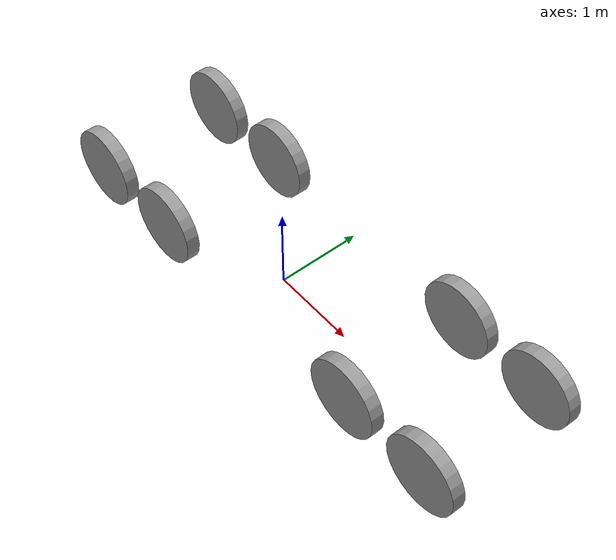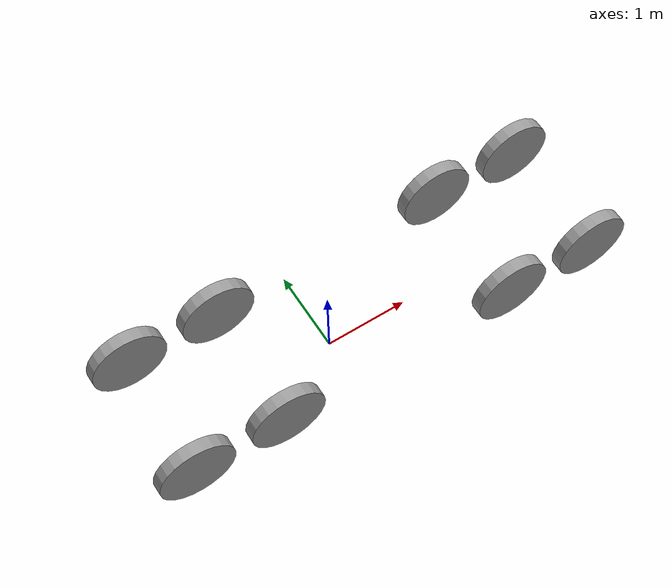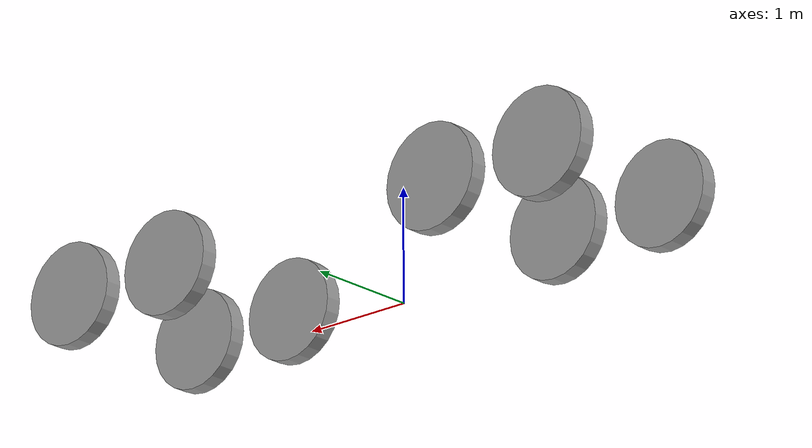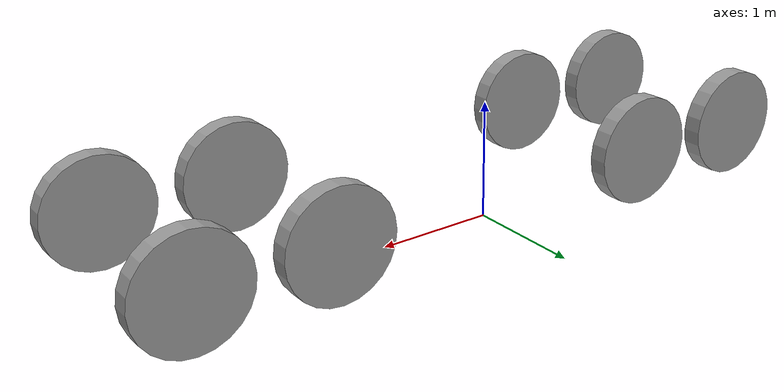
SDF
<?xml version='1.0'?>
<sdf version='1.7'>
  <model name='train_wheels'>
    <link name='link'>
      <inertial>
        <mass>1</mass>
        <inertia>
          <ixx>0.145833</ixx>
          <ixy>0</ixy>
          <ixz>0</ixz>
          <iyy>0.145833</iyy>
          <iyz>0</iyz>
          <izz>0.125</izz>
        </inertia>
        <pose>0 0 0 0 -0 0</pose>
      </inertial>
      <self_collide>0</self_collide>
      <enable_wind>0</enable_wind>
      <kinematic>0</kinematic>
      <pose>3 0.75 0.6 0 -0 0</pose>
      <gravity>1</gravity>
      <visual name='visual'>
        <geometry>
          <cylinder>
            <radius>0.45</radius>
            <length>0.15</length>
          </cylinder>
        </geometry>
        <material>
          <script>
            <name>Gazebo/Grey</name>
            <uri>file://media/materials/scripts/gazebo.material</uri>
          </script>
          <shader type='pixel'>
            <normal_map>__default__</normal_map>
          </shader>
          <ambient>0.3 0.3 0.3 1</ambient>
          <diffuse>0.7 0.7 0.7 1</diffuse>
          <specular>0.01 0.01 0.01 1</specular>
          <emissive>0 0 0 1</emissive>
        </material>
        <pose>0 0 0 1.5708 -0 0</pose>
        <transparency>0</transparency>
        <cast_shadows>1</cast_shadows>
      </visual>
    </link>
    <link name='link_clone'>
      <inertial>
        <mass>1</mass>
        <inertia>
          <ixx>0.145833</ixx>
          <ixy>0</ixy>
          <ixz>0</ixz>
          <iyy>0.145833</iyy>
          <iyz>0</iyz>
          <izz>0.125</izz>
        </inertia>
        <pose>0 0 0 0 -0 0</pose>
      </inertial>
      <self_collide>0</self_collide>
      <enable_wind>0</enable_wind>
      <kinematic>0</kinematic>
      <pose>1.9 0.75 0.6 0 -0 0</pose>
      <gravity>1</gravity>
      <visual name='visual'>
        <geometry>
          <cylinder>
            <radius>0.45</radius>
            <length>0.15</length>
          </cylinder>
        </geometry>
        <material>
          <script>
            <name>Gazebo/Grey</name>
            <uri>file://media/materials/scripts/gazebo.material</uri>
          </script>
          <shader type='pixel'>
            <normal_map>__default__</normal_map>
          </shader>
          <ambient>0.3 0.3 0.3 1</ambient>
          <diffuse>0.7 0.7 0.7 1</diffuse>
          <specular>0.01 0.01 0.01 1</specular>
          <emissive>0 0 0 1</emissive>
        </material>
        <pose>0 0 0 1.5708 -0 0</pose>
        <transparency>0</transparency>
        <cast_shadows>1</cast_shadows>
      </visual>
    </link>
    <link name='link_clone_0'>
      <inertial>
        <mass>1</mass>
        <inertia>
          <ixx>0.145833</ixx>
          <ixy>0</ixy>
          <ixz>0</ixz>
          <iyy>0.145833</iyy>
          <iyz>0</iyz>
          <izz>0.125</izz>
        </inertia>
        <pose>0 0 0 0 -0 0</pose>
      </inertial>
      <self_collide>0</self_collide>
      <enable_wind>0</enable_wind>
      <kinematic>0</kinematic>
      <pose>3 -0.75 0.6 0 -0 0</pose>
      <gravity>1</gravity>
      <visual name='visual'>
        <geometry>
          <cylinder>
            <radius>0.45</radius>
            <length>0.15</length>
          </cylinder>
        </geometry>
        <material>
          <script>
            <name>Gazebo/Grey</name>
            <uri>file://media/materials/scripts/gazebo.material</uri>
          </script>
          <shader type='pixel'>
            <normal_map>__default__</normal_map>
          </shader>
          <ambient>0.3 0.3 0.3 1</ambient>
          <diffuse>0.7 0.7 0.7 1</diffuse>
          <specular>0.01 0.01 0.01 1</specular>
          <emissive>0 0 0 1</emissive>
        </material>
        <pose>0 0 0 1.5708 -0 0</pose>
        <transparency>0</transparency>
        <cast_shadows>1</cast_shadows>
      </visual>
    </link>
    <link name='link_clone_0_clone'>
      <inertial>
        <mass>1</mass>
        <inertia>
          <ixx>0.145833</ixx>
          <ixy>0</ixy>
          <ixz>0</ixz>
          <iyy>0.145833</iyy>
          <iyz>0</iyz>
          <izz>0.125</izz>
        </inertia>
        <pose>0 0 0 0 -0 0</pose>
      </inertial>
      <self_collide>0</self_collide>
      <enable_wind>0</enable_wind>
      <kinematic>0</kinematic>
      <pose>1.9 -0.75 0.6 0 -0 0</pose>
      <gravity>1</gravity>
      <visual name='visual'>
        <geometry>
          <cylinder>
            <radius>0.45</radius>
            <length>0.15</length>
          </cylinder>
        </geometry>
        <material>
          <script>
            <name>Gazebo/Grey</name>
            <uri>file://media/materials/scripts/gazebo.material</uri>
          </script>
          <shader type='pixel'>
            <normal_map>__default__</normal_map>
          </shader>
          <ambient>0.3 0.3 0.3 1</ambient>
          <diffuse>0.7 0.7 0.7 1</diffuse>
          <specular>0.01 0.01 0.01 1</specular>
          <emissive>0 0 0 1</emissive>
        </material>
        <pose>0 0 0 1.5708 -0 0</pose>
        <transparency>0</transparency>
        <cast_shadows>1</cast_shadows>
      </visual>
    </link>
    <link name='link_clone_0_clone_clone'>
      <inertial>
        <mass>1</mass>
        <inertia>
          <ixx>0.145833</ixx>
          <ixy>0</ixy>
          <ixz>0</ixz>
          <iyy>0.145833</iyy>
          <iyz>0</iyz>
          <izz>0.125</izz>
        </inertia>
        <pose>0 0 0 0 -0 0</pose>
      </inertial>
      <self_collide>0</self_collide>
      <enable_wind>0</enable_wind>
      <kinematic>0</kinematic>
      <pose>-1 -0.75 0.6 0 -0 0</pose>
      <gravity>1</gravity>
      <visual name='visual'>
        <geometry>
          <cylinder>
            <radius>0.45</radius>
            <length>0.15</length>
          </cylinder>
        </geometry>
        <material>
          <script>
            <name>Gazebo/Grey</name>
            <uri>file://media/materials/scripts/gazebo.material</uri>
          </script>
          <shader type='pixel'>
            <normal_map>__default__</normal_map>
          </shader>
          <ambient>0.3 0.3 0.3 1</ambient>
          <diffuse>0.7 0.7 0.7 1</diffuse>
          <specular>0.01 0.01 0.01 1</specular>
          <emissive>0 0 0 1</emissive>
        </material>
        <pose>0 0 0 1.5708 -0 0</pose>
        <transparency>0</transparency>
        <cast_shadows>1</cast_shadows>
      </visual>
    </link>
    <link name='link_clone_0_clone_clone_clone'>
      <inertial>
        <mass>1</mass>
        <inertia>
          <ixx>0.145833</ixx>
          <ixy>0</ixy>
          <ixz>0</ixz>
          <iyy>0.145833</iyy>
          <iyz>0</iyz>
          <izz>0.125</izz>
        </inertia>
        <pose>0 0 0 0 -0 0</pose>
      </inertial>
      <self_collide>0</self_collide>
      <enable_wind>0</enable_wind>
      <kinematic>0</kinematic>
      <pose>-2.1 -0.75 0.6 0 -0 0</pose>
      <gravity>1</gravity>
      <visual name='visual'>
        <geometry>
          <cylinder>
            <radius>0.45</radius>
            <length>0.15</length>
          </cylinder>
        </geometry>
        <material>
          <script>
            <name>Gazebo/Grey</name>
            <uri>file://media/materials/scripts/gazebo.material</uri>
          </script>
          <shader type='pixel'>
            <normal_map>__default__</normal_map>
          </shader>
          <ambient>0.3 0.3 0.3 1</ambient>
          <diffuse>0.7 0.7 0.7 1</diffuse>
          <specular>0.01 0.01 0.01 1</specular>
          <emissive>0 0 0 1</emissive>
        </material>
        <pose>0 0 0 1.5708 -0 0</pose>
        <transparency>0</transparency>
        <cast_shadows>1</cast_shadows>
      </visual>
    </link>
    <link name='link_clone_clone'>
      <inertial>
        <mass>1</mass>
        <inertia>
          <ixx>0.145833</ixx>
          <ixy>0</ixy>
          <ixz>0</ixz>
          <iyy>0.145833</iyy>
          <iyz>0</iyz>
          <izz>0.125</izz>
        </inertia>
        <pose>0 0 0 0 -0 0</pose>
      </inertial>
      <self_collide>0</self_collide>
      <enable_wind>0</enable_wind>
      <kinematic>0</kinematic>
      <pose>-1 0.75 0.6 0 -0 0</pose>
      <gravity>1</gravity>
      <visual name='visual'>
        <geometry>
          <cylinder>
            <radius>0.45</radius>
            <length>0.15</length>
          </cylinder>
        </geometry>
        <material>
          <script>
            <name>Gazebo/Grey</name>
            <uri>file://media/materials/scripts/gazebo.material</uri>
          </script>
          <shader type='pixel'>
            <normal_map>__default__</normal_map>
          </shader>
          <ambient>0.3 0.3 0.3 1</ambient>
          <diffuse>0.7 0.7 0.7 1</diffuse>
          <specular>0.01 0.01 0.01 1</specular>
          <emissive>0 0 0 1</emissive>
        </material>
        <pose>0 0 0 1.5708 -0 0</pose>
        <transparency>0</transparency>
        <cast_shadows>1</cast_shadows>
      </visual>
    </link>
    <link name='link_clone_clone_clone'>
      <inertial>
        <mass>1</mass>
        <inertia>
          <ixx>0.145833</ixx>
          <ixy>0</ixy>
          <ixz>0</ixz>
          <iyy>0.145833</iyy>
          <iyz>0</iyz>
          <izz>0.125</izz>
        </inertia>
        <pose>0 0 0 0 -0 0</pose>
      </inertial>
      <self_collide>0</self_collide>
      <enable_wind>0</enable_wind>
      <kinematic>0</kinematic>
      <pose>-2.1 0.75 0.6 0 -0 0</pose>
      <gravity>1</gravity>
      <visual name='visual'>
        <geometry>
          <cylinder>
            <radius>0.45</radius>
            <length>0.15</length>
          </cylinder>
        </geometry>
        <material>
          <script>
            <name>Gazebo/Grey</name>
            <uri>file://media/materials/scripts/gazebo.material</uri>
          </script>
          <shader type='pixel'>
            <normal_map>__default__</normal_map>
          </shader>
          <ambient>0.3 0.3 0.3 1</ambient>
          <diffuse>0.7 0.7 0.7 1</diffuse>
          <specular>0.01 0.01 0.01 1</specular>
          <emissive>0 0 0 1</emissive>
        </material>
        <pose>0 0 0 1.5708 -0 0</pose>
        <transparency>0</transparency>
        <cast_shadows>1</cast_shadows>
      </visual>
    </link>
    <static>1</static>
    <allow_auto_disable>1</allow_auto_disable>
  </model>
</sdf>
